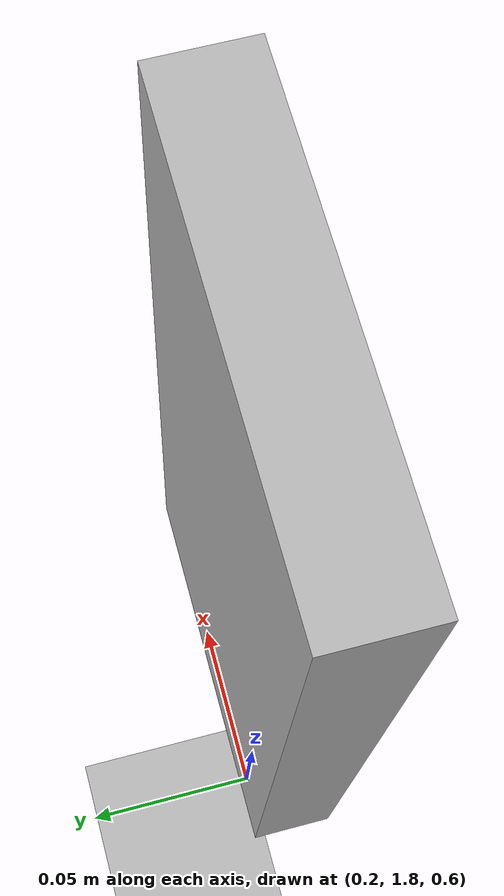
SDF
<?xml version="1.0" ?>
<sdf version="1.6">
  <world name="room">
    <include>
      <uri>model://sun</uri>
    </include>

    <include>
      <uri>model://course</uri>
    </include>

    <include>
      <uri>model://traffic_parking</uri>
      <pose>0.243646 1.7884 0.702708 0 -0 0</pose>
    </include>
  </world>
</sdf>

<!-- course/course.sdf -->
<sdf version="1.5">
  <model name="course">
    <static>true</static>
    <link name="course_link">
      <collision name="course_collision">
        <geometry>
          <plane>
            <normal>0 0 1</normal>
            <size>4 4</size>
          </plane>
        </geometry>
        <surface>
          <friction>
            <ode>
              <mu>100</mu>
              <mu2>50</mu2>
            </ode>
          </friction>
        </surface>
      </collision>
      <visual name="course_visual">
        <cast_shadows>false</cast_shadows>
        <geometry>
	  <plane>
            <normal>0 0 1</normal>
            <size>4 4</size>
          </plane>
        </geometry>
	      <material>
          <script>
            <uri>model://course/materials/scripts</uri>
            <uri>model://course/materials/textures</uri>
            <name>course</name>
          </script>
        </material>
      </visual>
    </link>
  </model>
</sdf>

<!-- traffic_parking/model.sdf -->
<sdf version="1.6">
  <model name="traffic_parking">
    <static>true</static>
    <link name="box">
      <pose>0 0 0 0 0 0</pose>
      <collision name="collision">
        <geometry>
          <box>
            <size>0.12 0.025 0.25</size>
          </box>
        </geometry>
      </collision>
      <visual name="visual">
        <geometry>
          <box>
            <size>0.12 0.025 0.25</size>
          </box>
        </geometry>
        <material>
          <script>
            <uri>model://turtlebot3_autorace/traffic_parking/materials/scripts</uri>
            <uri>model://turtlebot3_autorace/traffic_parking/materials/textures</uri>
            <name>traffic_parking</name>
          </script>
        </material>
      </visual>
    </link>
  </model>
</sdf>
